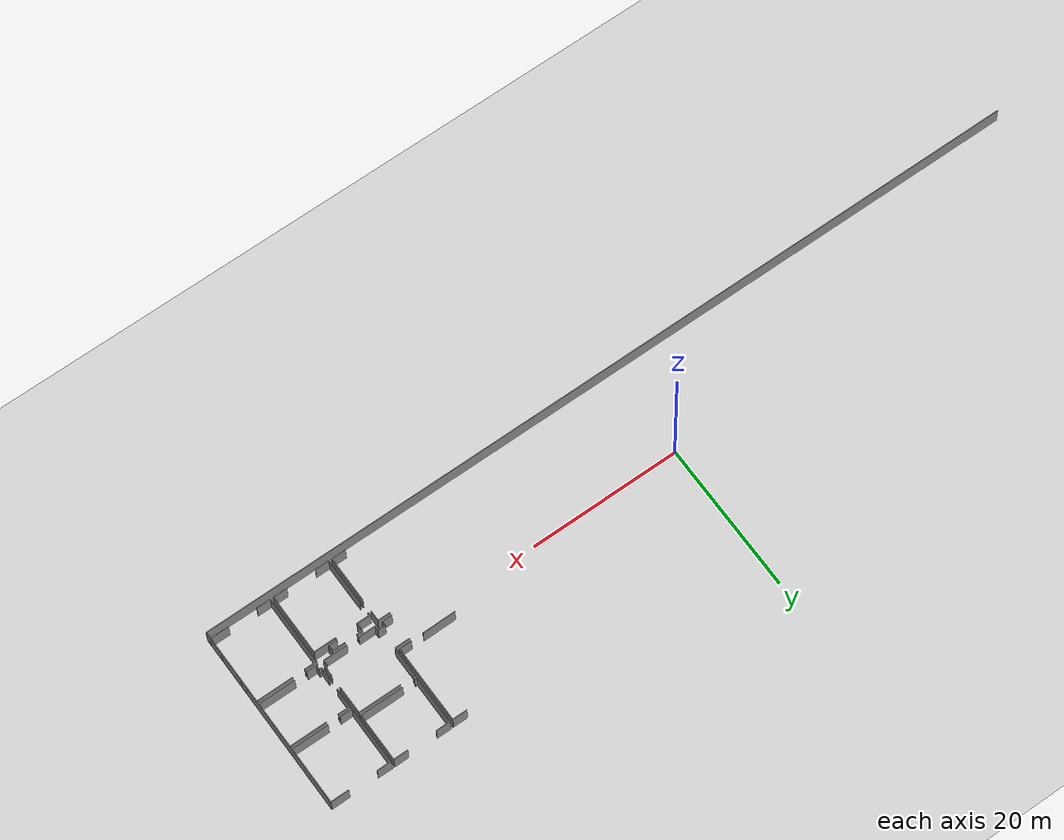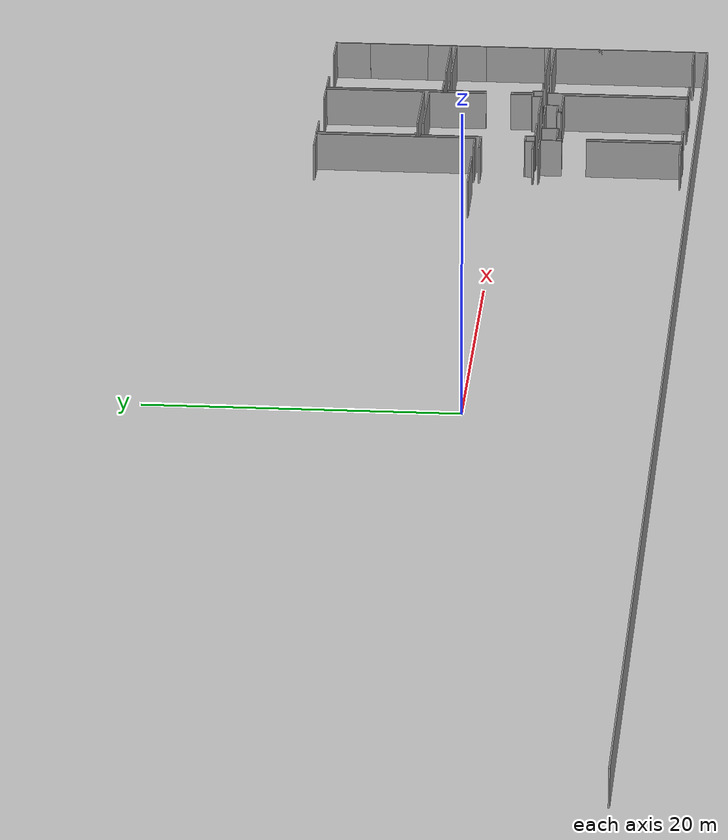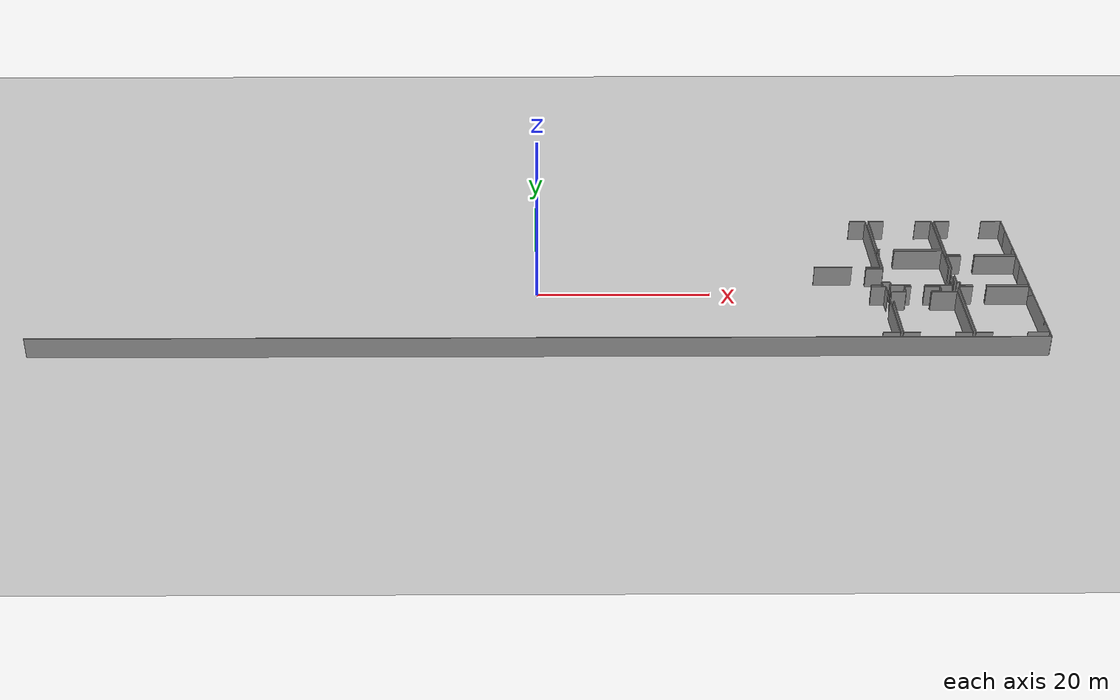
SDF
<sdf version="1.6">
 <world name="default">
  <model name="ground_plane">
   <static>1</static>
   <link name="link">
    <collision name="collision">
     <geometry><plane><normal>0 0 1</normal><size>100 100</size></plane></geometry>
     <surface><friction><ode><mu>100</mu><mu2>50</mu2></ode></friction></surface>
    </collision>
    <visual name="visual">
     <cast_shadows>0</cast_shadows>
     <geometry><plane><normal>0 0 1</normal><size>100 100</size></plane></geometry>
     <material>
      <script><uri>file://media/materials/scripts/gazebo.material</uri><name>Gazebo/Grey</name></script>
     </material>
    </visual>
   </link>
  </model>
  <model name="0510034692_Layout1">
   <static>1</static>
   <link name="Wall_242">
    <collision name="Wall_242_Collision">
     <geometry><box><size>1.93645641546 0.1 2.5</size></box></geometry>
     <pose>0.968228207728 0 1.25 0 0 0</pose>
    </collision>
    <visual name="Wall_242_Visual">
     <pose>0.968228207728 0 1.25 0 0 0</pose>
     <geometry><box><size>1.93645641546 0.1 2.5</size></box></geometry>
     <material>
      <script><uri>file://media/materials/scripts/gazebo.material</uri><name>Gazebo/Grey</name></script>
      <ambient>1 1 1 1</ambient>
     </material>
    </visual>
    <pose>94.4257564818 -0.0582421528533 0 0 0 0.0</pose>
   </link>
   <link name="Wall_243">
    <collision name="Wall_243_Collision">
     <geometry><box><size>10.4006019625 0.1 2.5</size></box></geometry>
     <pose>5.20030098123 0 1.25 0 0 0</pose>
    </collision>
    <visual name="Wall_243_Visual">
     <pose>5.20030098123 0 1.25 0 0 0</pose>
     <geometry><box><size>10.4006019625 0.1 2.5</size></box></geometry>
     <material>
      <script><uri>file://media/materials/scripts/gazebo.material</uri><name>Gazebo/Grey</name></script>
      <ambient>1 1 1 1</ambient>
     </material>
    </visual>
    <pose>96.3622128973 -0.0582421528533 0 0 0 -1.57079632679</pose>
   </link>
   <link name="Wall_244">
    <collision name="Wall_244_Collision">
     <geometry><box><size>1.62392826191 0.1 2.5</size></box></geometry>
     <pose>0.811964130955 0 1.25 0 0 0</pose>
    </collision>
    <visual name="Wall_244_Visual">
     <pose>0.811964130955 0 1.25 0 0 0</pose>
     <geometry><box><size>1.62392826191 0.1 2.5</size></box></geometry>
     <material>
      <script><uri>file://media/materials/scripts/gazebo.material</uri><name>Gazebo/Grey</name></script>
      <ambient>1 1 1 1</ambient>
     </material>
    </visual>
    <pose>96.3622128973 -10.4588441153 0 0 0 3.14159265359</pose>
   </link>
   <link name="Wall_245">
    <collision name="Wall_245_Collision">
     <geometry><box><size>4.39995014292 0.1 2.5</size></box></geometry>
     <pose>2.19997507146 0 1.25 0 0 0</pose>
    </collision>
    <visual name="Wall_245_Visual">
     <pose>2.19997507146 0 1.25 0 0 0</pose>
     <geometry><box><size>4.39995014292 0.1 2.5</size></box></geometry>
     <material>
      <script><uri>file://media/materials/scripts/gazebo.material</uri><name>Gazebo/Grey</name></script>
      <ambient>1 1 1 1</ambient>
     </material>
    </visual>
    <pose>93.1283141879 -10.4588441153 0 0 0 -3.13221991081</pose>
   </link>
   <link name="Wall_246">
    <collision name="Wall_246_Collision">
     <geometry><box><size>6.48403923922 0.1 2.5</size></box></geometry>
     <pose>3.24201961961 0 1.25 0 0 0</pose>
    </collision>
    <visual name="Wall_246_Visual">
     <pose>3.24201961961 0 1.25 0 0 0</pose>
     <geometry><box><size>6.48403923922 0.1 2.5</size></box></geometry>
     <material>
      <script><uri>file://media/materials/scripts/gazebo.material</uri><name>Gazebo/Grey</name></script>
      <ambient>1 1 1 1</ambient>
     </material>
    </visual>
    <pose>96.7352672097 -6.52845046689 0 0 0 1.57079632679</pose>
   </link>
   <link name="Wall_247">
    <collision name="Wall_247_Collision">
     <geometry><box><size>1.87796048416 0.1 2.5</size></box></geometry>
     <pose>0.938980242079 0 1.25 0 0 0</pose>
    </collision>
    <visual name="Wall_247_Visual">
     <pose>0.938980242079 0 1.25 0 0 0</pose>
     <geometry><box><size>1.87796048416 0.1 2.5</size></box></geometry>
     <material>
      <script><uri>file://media/materials/scripts/gazebo.material</uri><name>Gazebo/Grey</name></script>
      <ambient>1 1 1 1</ambient>
     </material>
    </visual>
    <pose>96.7352672097 -0.0444112276659 0 0 0 0.0</pose>
   </link>
   <link name="Wall_248">
    <collision name="Wall_248_Collision">
     <geometry><box><size>1.91602725073 0.1 2.5</size></box></geometry>
     <pose>0.958013625365 0 1.25 0 0 0</pose>
    </collision>
    <visual name="Wall_248_Visual">
     <pose>0.958013625365 0 1.25 0 0 0</pose>
     <geometry><box><size>1.91602725073 0.1 2.5</size></box></geometry>
     <material>
      <script><uri>file://media/materials/scripts/gazebo.material</uri><name>Gazebo/Grey</name></script>
      <ambient>1 1 1 1</ambient>
     </material>
    </visual>
    <pose>102.47066004 -0.0444112276659 0 0 0 0.0</pose>
   </link>
   <link name="Wall_249">
    <collision name="Wall_249_Collision">
     <geometry><box><size>6.46145295772 0.1 2.5</size></box></geometry>
     <pose>3.23072647886 0 1.25 0 0 0</pose>
    </collision>
    <visual name="Wall_249_Visual">
     <pose>3.23072647886 0 1.25 0 0 0</pose>
     <geometry><box><size>6.46145295772 0.1 2.5</size></box></geometry>
     <material>
      <script><uri>file://media/materials/scripts/gazebo.material</uri><name>Gazebo/Grey</name></script>
      <ambient>1 1 1 1</ambient>
     </material>
    </visual>
    <pose>104.38668729 -0.0444112276659 0 0 0 -1.57079632679</pose>
   </link>
   <link name="Wall_250">
    <collision name="Wall_250_Collision">
     <geometry><box><size>5.70493941674 0.1 2.5</size></box></geometry>
     <pose>2.85246970837 0 1.25 0 0 0</pose>
    </collision>
    <visual name="Wall_250_Visual">
     <pose>2.85246970837 0 1.25 0 0 0</pose>
     <geometry><box><size>5.70493941674 0.1 2.5</size></box></geometry>
     <material>
      <script><uri>file://media/materials/scripts/gazebo.material</uri><name>Gazebo/Grey</name></script>
      <ambient>1 1 1 1</ambient>
     </material>
    </visual>
    <pose>104.38668729 -6.50586418539 0 0 0 3.14159265359</pose>
   </link>
   <link name="Wall_251">
    <collision name="Wall_251_Collision">
     <geometry><box><size>0.331317186254 0.1 2.5</size></box></geometry>
     <pose>0.165658593127 0 1.25 0 0 0</pose>
    </collision>
    <visual name="Wall_251_Visual">
     <pose>0.165658593127 0 1.25 0 0 0</pose>
     <geometry><box><size>0.331317186254 0.1 2.5</size></box></geometry>
     <material>
      <script><uri>file://media/materials/scripts/gazebo.material</uri><name>Gazebo/Grey</name></script>
      <ambient>1 1 1 1</ambient>
     </material>
    </visual>
    <pose>97.0658136327 -6.50586418539 0 0 0 -3.07336856694</pose>
   </link>
   <link name="Wall_252">
    <collision name="Wall_252_Collision">
     <geometry><box><size>7.67946259877 0.1 2.5</size></box></geometry>
     <pose>3.83973129938 0 1.25 0 0 0</pose>
    </collision>
    <visual name="Wall_252_Visual">
     <pose>3.83973129938 0 1.25 0 0 0</pose>
     <geometry><box><size>7.67946259877 0.1 2.5</size></box></geometry>
     <material>
      <script><uri>file://media/materials/scripts/gazebo.material</uri><name>Gazebo/Grey</name></script>
      <ambient>1 1 1 1</ambient>
     </material>
    </visual>
    <pose>104.722309282 -7.72818805998 0 0 0 1.57079632679</pose>
   </link>
   <link name="Wall_253">
    <collision name="Wall_253_Collision">
     <geometry><box><size>1.9037189962 0.1 2.5</size></box></geometry>
     <pose>0.951859498102 0 1.25 0 0 0</pose>
    </collision>
    <visual name="Wall_253_Visual">
     <pose>0.951859498102 0 1.25 0 0 0</pose>
     <geometry><box><size>1.9037189962 0.1 2.5</size></box></geometry>
     <material>
      <script><uri>file://media/materials/scripts/gazebo.material</uri><name>Gazebo/Grey</name></script>
      <ambient>1 1 1 1</ambient>
     </material>
    </visual>
    <pose>104.722309282 -0.0487254612106 0 0 0 0.0</pose>
   </link>
   <link name="Wall_254">
    <collision name="Wall_254_Collision">
     <geometry><box><size>2.41723967724 0.1 2.5</size></box></geometry>
     <pose>1.20861983862 0 1.25 0 0 0</pose>
    </collision>
    <visual name="Wall_254_Visual">
     <pose>1.20861983862 0 1.25 0 0 0</pose>
     <geometry><box><size>2.41723967724 0.1 2.5</size></box></geometry>
     <material>
      <script><uri>file://media/materials/scripts/gazebo.material</uri><name>Gazebo/Grey</name></script>
      <ambient>1 1 1 1</ambient>
     </material>
    </visual>
    <pose>110.454529882 -0.0487254612106 0 0 0 0.0</pose>
   </link>
   <link name="Wall_255">
    <collision name="Wall_255_Collision">
     <geometry><box><size>2.2796917607 0.1 2.5</size></box></geometry>
     <pose>1.13984588035 0 1.25 0 0 0</pose>
    </collision>
    <visual name="Wall_255_Visual">
     <pose>1.13984588035 0 1.25 0 0 0</pose>
     <geometry><box><size>2.2796917607 0.1 2.5</size></box></geometry>
     <material>
      <script><uri>file://media/materials/scripts/gazebo.material</uri><name>Gazebo/Grey</name></script>
      <ambient>1 1 1 1</ambient>
     </material>
    </visual>
    <pose>112.871769559 -0.0487254612106 0 0 0 -1.57079632679</pose>
   </link>
   <link name="Wall_256">
    <collision name="Wall_256_Collision">
     <geometry><box><size>1.54804850721 0.1 2.5</size></box></geometry>
     <pose>0.774024253606 0 1.25 0 0 0</pose>
    </collision>
    <visual name="Wall_256_Visual">
     <pose>0.774024253606 0 1.25 0 0 0</pose>
     <geometry><box><size>1.54804850721 0.1 2.5</size></box></geometry>
     <material>
      <script><uri>file://media/materials/scripts/gazebo.material</uri><name>Gazebo/Grey</name></script>
      <ambient>1 1 1 1</ambient>
     </material>
    </visual>
    <pose>112.871769559 -6.17316064556 0 0 0 -1.57079632679</pose>
   </link>
   <link name="Wall_257">
    <collision name="Wall_257_Collision">
     <geometry><box><size>4.89411728878 0.1 2.5</size></box></geometry>
     <pose>2.44705864439 0 1.25 0 0 0</pose>
    </collision>
    <visual name="Wall_257_Visual">
     <pose>2.44705864439 0 1.25 0 0 0</pose>
     <geometry><box><size>4.89411728878 0.1 2.5</size></box></geometry>
     <material>
      <script><uri>file://media/materials/scripts/gazebo.material</uri><name>Gazebo/Grey</name></script>
      <ambient>1 1 1 1</ambient>
     </material>
    </visual>
    <pose>112.871769559 -7.72120915277 0 0 0 3.14159265359</pose>
   </link>
   <link name="Wall_258">
    <collision name="Wall_258_Collision">
     <geometry><box><size>1.63434807865 0.1 2.5</size></box></geometry>
     <pose>0.817174039327 0 1.25 0 0 0</pose>
    </collision>
    <visual name="Wall_258_Visual">
     <pose>0.817174039327 0 1.25 0 0 0</pose>
     <geometry><box><size>1.63434807865 0.1 2.5</size></box></geometry>
     <material>
      <script><uri>file://media/materials/scripts/gazebo.material</uri><name>Gazebo/Grey</name></script>
      <ambient>1 1 1 1</ambient>
     </material>
    </visual>
    <pose>106.35664246 -7.72120915277 0 0 0 -3.13732249321</pose>
   </link>
   <link name="Wall_259">
    <collision name="Wall_259_Collision">
     <geometry><box><size>0.606784259138 0.1 2.5</size></box></geometry>
     <pose>0.303392129569 0 1.25 0 0 0</pose>
    </collision>
    <visual name="Wall_259_Visual">
     <pose>0.303392129569 0 1.25 0 0 0</pose>
     <geometry><box><size>0.606784259138 0.1 2.5</size></box></geometry>
     <material>
      <script><uri>file://media/materials/scripts/gazebo.material</uri><name>Gazebo/Grey</name></script>
      <ambient>1 1 1 1</ambient>
     </material>
    </visual>
    <pose>105.055901047 -14.3403854133 0 0 0 1.57079632679</pose>
   </link>
   <link name="Wall_260">
    <collision name="Wall_260_Collision">
     <geometry><box><size>0.320014617638 0.1 2.5</size></box></geometry>
     <pose>0.160007308819 0 1.25 0 0 0</pose>
    </collision>
    <visual name="Wall_260_Visual">
     <pose>0.160007308819 0 1.25 0 0 0</pose>
     <geometry><box><size>0.320014617638 0.1 2.5</size></box></geometry>
     <material>
      <script><uri>file://media/materials/scripts/gazebo.material</uri><name>Gazebo/Grey</name></script>
      <ambient>1 1 1 1</ambient>
     </material>
    </visual>
    <pose>105.055901047 -13.7336011542 0 0 0 3.14159265359</pose>
   </link>
   <link name="Wall_261">
    <collision name="Wall_261_Collision">
     <geometry><box><size>1.47864010283 0.1 2.5</size></box></geometry>
     <pose>0.739320051416 0 1.25 0 0 0</pose>
    </collision>
    <visual name="Wall_261_Visual">
     <pose>0.739320051416 0 1.25 0 0 0</pose>
     <geometry><box><size>1.47864010283 0.1 2.5</size></box></geometry>
     <material>
      <script><uri>file://media/materials/scripts/gazebo.material</uri><name>Gazebo/Grey</name></script>
      <ambient>1 1 1 1</ambient>
     </material>
    </visual>
    <pose>104.735886429 -13.7336011542 0 0 0 1.57079632679</pose>
   </link>
   <link name="Wall_262">
    <collision name="Wall_262_Collision">
     <geometry><box><size>2.56100516566 0.1 2.5</size></box></geometry>
     <pose>1.28050258283 0 1.25 0 0 0</pose>
    </collision>
    <visual name="Wall_262_Visual">
     <pose>1.28050258283 0 1.25 0 0 0</pose>
     <geometry><box><size>2.56100516566 0.1 2.5</size></box></geometry>
     <material>
      <script><uri>file://media/materials/scripts/gazebo.material</uri><name>Gazebo/Grey</name></script>
      <ambient>1 1 1 1</ambient>
     </material>
    </visual>
    <pose>104.735886429 -10.636489026 0 0 0 1.57079632679</pose>
   </link>
   <link name="Wall_263">
    <collision name="Wall_263_Collision">
     <geometry><box><size>1.63801296554 0.1 2.5</size></box></geometry>
     <pose>0.81900648277 0 1.25 0 0 0</pose>
    </collision>
    <visual name="Wall_263_Visual">
     <pose>0.81900648277 0 1.25 0 0 0</pose>
     <geometry><box><size>1.63801296554 0.1 2.5</size></box></geometry>
     <material>
      <script><uri>file://media/materials/scripts/gazebo.material</uri><name>Gazebo/Grey</name></script>
      <ambient>1 1 1 1</ambient>
     </material>
    </visual>
    <pose>104.735886429 -8.07548386033 0 0 0 0.0</pose>
   </link>
   <link name="Wall_264">
    <collision name="Wall_264_Collision">
     <geometry><box><size>4.89031061213 0.1 2.5</size></box></geometry>
     <pose>2.44515530606 0 1.25 0 0 0</pose>
    </collision>
    <visual name="Wall_264_Visual">
     <pose>2.44515530606 0 1.25 0 0 0</pose>
     <geometry><box><size>4.89031061213 0.1 2.5</size></box></geometry>
     <material>
      <script><uri>file://media/materials/scripts/gazebo.material</uri><name>Gazebo/Grey</name></script>
      <ambient>1 1 1 1</ambient>
     </material>
    </visual>
    <pose>107.978921162 -8.07548386033 0 0 0 0.0</pose>
   </link>
   <link name="Wall_265">
    <collision name="Wall_265_Collision">
     <geometry><box><size>2.01500084381 0.1 2.5</size></box></geometry>
     <pose>1.00750042191 0 1.25 0 0 0</pose>
    </collision>
    <visual name="Wall_265_Visual">
     <pose>1.00750042191 0 1.25 0 0 0</pose>
     <geometry><box><size>2.01500084381 0.1 2.5</size></box></geometry>
     <material>
      <script><uri>file://media/materials/scripts/gazebo.material</uri><name>Gazebo/Grey</name></script>
      <ambient>1 1 1 1</ambient>
     </material>
    </visual>
    <pose>112.869231775 -8.07548386033 0 0 0 -1.57079632679</pose>
   </link>
   <link name="Wall_266">
    <collision name="Wall_266_Collision">
     <geometry><box><size>0.347422689569 0.1 2.5</size></box></geometry>
     <pose>0.173711344785 0 1.25 0 0 0</pose>
    </collision>
    <visual name="Wall_266_Visual">
     <pose>0.173711344785 0 1.25 0 0 0</pose>
     <geometry><box><size>0.347422689569 0.1 2.5</size></box></geometry>
     <material>
      <script><uri>file://media/materials/scripts/gazebo.material</uri><name>Gazebo/Grey</name></script>
      <ambient>1 1 1 1</ambient>
     </material>
    </visual>
    <pose>112.869231775 -13.9485514961 0 0 0 -1.57079632679</pose>
   </link>
   <link name="Wall_267">
    <collision name="Wall_267_Collision">
     <geometry><box><size>4.86493276775 0.1 2.5</size></box></geometry>
     <pose>2.43246638387 0 1.25 0 0 0</pose>
    </collision>
    <visual name="Wall_267_Visual">
     <pose>2.43246638387 0 1.25 0 0 0</pose>
     <geometry><box><size>4.86493276775 0.1 2.5</size></box></geometry>
     <material>
      <script><uri>file://media/materials/scripts/gazebo.material</uri><name>Gazebo/Grey</name></script>
      <ambient>1 1 1 1</ambient>
     </material>
    </visual>
    <pose>112.869231775 -14.2959741857 0 0 0 3.14159265359</pose>
   </link>
   <link name="Wall_268">
    <collision name="Wall_268_Collision">
     <geometry><box><size>1.32140954048 0.1 2.5</size></box></geometry>
     <pose>0.660704770239 0 1.25 0 0 0</pose>
    </collision>
    <visual name="Wall_268_Visual">
     <pose>0.660704770239 0 1.25 0 0 0</pose>
     <geometry><box><size>1.32140954048 0.1 2.5</size></box></geometry>
     <material>
      <script><uri>file://media/materials/scripts/gazebo.material</uri><name>Gazebo/Grey</name></script>
      <ambient>1 1 1 1</ambient>
     </material>
    </visual>
    <pose>106.376564068 -14.2959741857 0 0 0 -3.10797734248</pose>
   </link>
   <link name="Wall_269">
    <collision name="Wall_269_Collision">
     <geometry><box><size>9.27788612707 0.1 2.5</size></box></geometry>
     <pose>4.63894306354 0 1.25 0 0 0</pose>
    </collision>
    <visual name="Wall_269_Visual">
     <pose>4.63894306354 0 1.25 0 0 0</pose>
     <geometry><box><size>9.27788612707 0.1 2.5</size></box></geometry>
     <material>
      <script><uri>file://media/materials/scripts/gazebo.material</uri><name>Gazebo/Grey</name></script>
      <ambient>1 1 1 1</ambient>
     </material>
    </visual>
    <pose>104.740454441 -23.9569388737 0 0 0 1.57079632679</pose>
   </link>
   <link name="Wall_270">
    <collision name="Wall_270_Collision">
     <geometry><box><size>1.63039961223 0.1 2.5</size></box></geometry>
     <pose>0.815199806113 0 1.25 0 0 0</pose>
    </collision>
    <visual name="Wall_270_Visual">
     <pose>0.815199806113 0 1.25 0 0 0</pose>
     <geometry><box><size>1.63039961223 0.1 2.5</size></box></geometry>
     <material>
      <script><uri>file://media/materials/scripts/gazebo.material</uri><name>Gazebo/Grey</name></script>
      <ambient>1 1 1 1</ambient>
     </material>
    </visual>
    <pose>104.740454441 -14.6790527466 0 0 0 0.0</pose>
   </link>
   <link name="Wall_271">
    <collision name="Wall_271_Collision">
     <geometry><box><size>4.89665507322 0.1 2.5</size></box></geometry>
     <pose>2.44832753661 0 1.25 0 0 0</pose>
    </collision>
    <visual name="Wall_271_Visual">
     <pose>2.44832753661 0 1.25 0 0 0</pose>
     <geometry><box><size>4.89665507322 0.1 2.5</size></box></geometry>
     <material>
      <script><uri>file://media/materials/scripts/gazebo.material</uri><name>Gazebo/Grey</name></script>
      <ambient>1 1 1 1</ambient>
     </material>
    </visual>
    <pose>107.97765227 -14.6790527466 0 0 0 0.0</pose>
   </link>
   <link name="Wall_272">
    <collision name="Wall_272_Collision">
     <geometry><box><size>3.16157185293 0.1 2.5</size></box></geometry>
     <pose>1.58078592646 0 1.25 0 0 0</pose>
    </collision>
    <visual name="Wall_272_Visual">
     <pose>1.58078592646 0 1.25 0 0 0</pose>
     <geometry><box><size>3.16157185293 0.1 2.5</size></box></geometry>
     <material>
      <script><uri>file://media/materials/scripts/gazebo.material</uri><name>Gazebo/Grey</name></script>
      <ambient>1 1 1 1</ambient>
     </material>
    </visual>
    <pose>112.874307343 -14.6790527466 0 0 0 -1.57079632679</pose>
   </link>
   <link name="Wall_273">
    <collision name="Wall_273_Collision">
     <geometry><box><size>2.26548016785 0.1 2.5</size></box></geometry>
     <pose>1.13274008392 0 1.25 0 0 0</pose>
    </collision>
    <visual name="Wall_273_Visual">
     <pose>1.13274008392 0 1.25 0 0 0</pose>
     <geometry><box><size>2.26548016785 0.1 2.5</size></box></geometry>
     <material>
      <script><uri>file://media/materials/scripts/gazebo.material</uri><name>Gazebo/Grey</name></script>
      <ambient>1 1 1 1</ambient>
     </material>
    </visual>
    <pose>112.874307343 -21.6980569453 0 0 0 -1.57079632679</pose>
   </link>
   <link name="Wall_274">
    <collision name="Wall_274_Collision">
     <geometry><box><size>2.4210463539 0.1 2.5</size></box></geometry>
     <pose>1.21052317695 0 1.25 0 0 0</pose>
    </collision>
    <visual name="Wall_274_Visual">
     <pose>1.21052317695 0 1.25 0 0 0</pose>
     <geometry><box><size>2.4210463539 0.1 2.5</size></box></geometry>
     <material>
      <script><uri>file://media/materials/scripts/gazebo.material</uri><name>Gazebo/Grey</name></script>
      <ambient>1 1 1 1</ambient>
     </material>
    </visual>
    <pose>112.874307343 -23.9635371132 0 0 0 3.14159265359</pose>
   </link>
   <link name="Wall_275">
    <collision name="Wall_275_Collision">
     <geometry><box><size>1.86934366204 0.1 2.5</size></box></geometry>
     <pose>0.934671831019 0 1.25 0 0 0</pose>
    </collision>
    <visual name="Wall_275_Visual">
     <pose>0.934671831019 0 1.25 0 0 0</pose>
     <geometry><box><size>1.86934366204 0.1 2.5</size></box></geometry>
     <material>
      <script><uri>file://media/materials/scripts/gazebo.material</uri><name>Gazebo/Grey</name></script>
      <ambient>1 1 1 1</ambient>
     </material>
    </visual>
    <pose>106.609786458 -23.9635371132 0 0 0 3.13806293705</pose>
   </link>
   <link name="Wall_276">
    <collision name="Wall_276_Collision">
     <geometry><box><size>6.23914304095 0.1 2.5</size></box></geometry>
     <pose>3.11957152048 0 1.25 0 0 0</pose>
    </collision>
    <visual name="Wall_276_Visual">
     <pose>3.11957152048 0 1.25 0 0 0</pose>
     <geometry><box><size>6.23914304095 0.1 2.5</size></box></geometry>
     <material>
      <script><uri>file://media/materials/scripts/gazebo.material</uri><name>Gazebo/Grey</name></script>
      <ambient>1 1 1 1</ambient>
     </material>
    </visual>
    <pose>96.7403427785 -23.9547817569 0 0 0 1.57079632679</pose>
   </link>
   <link name="Wall_277">
    <collision name="Wall_277_Collision">
     <geometry><box><size>0.335621991932 0.1 2.5</size></box></geometry>
     <pose>0.167810995966 0 1.25 0 0 0</pose>
    </collision>
    <visual name="Wall_277_Visual">
     <pose>0.167810995966 0 1.25 0 0 0</pose>
     <geometry><box><size>0.335621991932 0.1 2.5</size></box></geometry>
     <material>
      <script><uri>file://media/materials/scripts/gazebo.material</uri><name>Gazebo/Grey</name></script>
      <ambient>1 1 1 1</ambient>
     </material>
    </visual>
    <pose>96.7403427785 -16.1187378583 0 0 0 1.57079632679</pose>
   </link>
   <link name="Wall_278">
    <collision name="Wall_278_Collision">
     <geometry><box><size>1.75107126226 0.1 2.5</size></box></geometry>
     <pose>0.875535631128 0 1.25 0 0 0</pose>
    </collision>
    <visual name="Wall_278_Visual">
     <pose>0.875535631128 0 1.25 0 0 0</pose>
     <geometry><box><size>1.75107126226 0.1 2.5</size></box></geometry>
     <material>
      <script><uri>file://media/materials/scripts/gazebo.material</uri><name>Gazebo/Grey</name></script>
      <ambient>1 1 1 1</ambient>
     </material>
    </visual>
    <pose>96.7403427785 -15.7831158664 0 0 0 0.0</pose>
   </link>
   <link name="Wall_279">
    <collision name="Wall_279_Collision">
     <geometry><box><size>1.09441953891 0.1 2.5</size></box></geometry>
     <pose>0.547209769455 0 1.25 0 0 0</pose>
    </collision>
    <visual name="Wall_279_Visual">
     <pose>0.547209769455 0 1.25 0 0 0</pose>
     <geometry><box><size>1.09441953891 0.1 2.5</size></box></geometry>
     <material>
      <script><uri>file://media/materials/scripts/gazebo.material</uri><name>Gazebo/Grey</name></script>
      <ambient>1 1 1 1</ambient>
     </material>
    </visual>
    <pose>98.4914140408 -15.7831158664 0 0 0 1.57079632679</pose>
   </link>
   <link name="Wall_280">
    <collision name="Wall_280_Collision">
     <geometry><box><size>0.773389807496 0.1 2.5</size></box></geometry>
     <pose>0.386694903748 0 1.25 0 0 0</pose>
    </collision>
    <visual name="Wall_280_Visual">
     <pose>0.386694903748 0 1.25 0 0 0</pose>
     <geometry><box><size>0.773389807496 0.1 2.5</size></box></geometry>
     <material>
      <script><uri>file://media/materials/scripts/gazebo.material</uri><name>Gazebo/Grey</name></script>
      <ambient>1 1 1 1</ambient>
     </material>
    </visual>
    <pose>98.4914140408 -14.6886963274 0 0 0 0.0</pose>
   </link>
   <link name="Wall_281">
    <collision name="Wall_281_Collision">
     <geometry><box><size>1.74345790894 0.1 2.5</size></box></geometry>
     <pose>0.871728954471 0 1.25 0 0 0</pose>
    </collision>
    <visual name="Wall_281_Visual">
     <pose>0.871728954471 0 1.25 0 0 0</pose>
     <geometry><box><size>1.74345790894 0.1 2.5</size></box></geometry>
     <material>
      <script><uri>file://media/materials/scripts/gazebo.material</uri><name>Gazebo/Grey</name></script>
      <ambient>1 1 1 1</ambient>
     </material>
    </visual>
    <pose>100.851934236 -14.6886963274 0 0 0 0.0</pose>
   </link>
   <link name="Wall_282">
    <collision name="Wall_282_Collision">
     <geometry><box><size>0.832393295681 0.1 2.5</size></box></geometry>
     <pose>0.416196647841 0 1.25 0 0 0</pose>
    </collision>
    <visual name="Wall_282_Visual">
     <pose>0.416196647841 0 1.25 0 0 0</pose>
     <geometry><box><size>0.832393295681 0.1 2.5</size></box></geometry>
     <material>
      <script><uri>file://media/materials/scripts/gazebo.material</uri><name>Gazebo/Grey</name></script>
      <ambient>1 1 1 1</ambient>
     </material>
    </visual>
    <pose>102.595392145 -14.6886963274 0 0 0 -1.57079632679</pose>
   </link>
   <link name="Wall_283">
    <collision name="Wall_283_Collision">
     <geometry><box><size>1.14758612289 0.1 2.5</size></box></geometry>
     <pose>0.573793061444 0 1.25 0 0 0</pose>
    </collision>
    <visual name="Wall_283_Visual">
     <pose>0.573793061444 0 1.25 0 0 0</pose>
     <geometry><box><size>1.14758612289 0.1 2.5</size></box></geometry>
     <material>
      <script><uri>file://media/materials/scripts/gazebo.material</uri><name>Gazebo/Grey</name></script>
      <ambient>1 1 1 1</ambient>
     </material>
    </visual>
    <pose>102.595392145 -15.5210896231 0 0 0 3.14159265359</pose>
   </link>
   <link name="Wall_284">
    <collision name="Wall_284_Collision">
     <geometry><box><size>0.253778443805 0.1 2.5</size></box></geometry>
     <pose>0.126889221903 0 1.25 0 0 0</pose>
    </collision>
    <visual name="Wall_284_Visual">
     <pose>0.126889221903 0 1.25 0 0 0</pose>
     <geometry><box><size>0.253778443805 0.1 2.5</size></box></geometry>
     <material>
      <script><uri>file://media/materials/scripts/gazebo.material</uri><name>Gazebo/Grey</name></script>
      <ambient>1 1 1 1</ambient>
     </material>
    </visual>
    <pose>101.447806022 -15.5210896231 0 0 0 -1.57079632679</pose>
   </link>
   <link name="Wall_285">
    <collision name="Wall_285_Collision">
     <geometry><box><size>2.91299586722 0.1 2.5</size></box></geometry>
     <pose>1.45649793361 0 1.25 0 0 0</pose>
    </collision>
    <visual name="Wall_285_Visual">
     <pose>1.45649793361 0 1.25 0 0 0</pose>
     <geometry><box><size>2.91299586722 0.1 2.5</size></box></geometry>
     <material>
      <script><uri>file://media/materials/scripts/gazebo.material</uri><name>Gazebo/Grey</name></script>
      <ambient>1 1 1 1</ambient>
     </material>
    </visual>
    <pose>101.447806022 -15.7748680669 0 0 0 0.0</pose>
   </link>
   <link name="Wall_286">
    <collision name="Wall_286_Collision">
     <geometry><box><size>8.17598012407 0.1 2.5</size></box></geometry>
     <pose>4.08799006204 0 1.25 0 0 0</pose>
    </collision>
    <visual name="Wall_286_Visual">
     <pose>4.08799006204 0 1.25 0 0 0</pose>
     <geometry><box><size>8.17598012407 0.1 2.5</size></box></geometry>
     <material>
      <script><uri>file://media/materials/scripts/gazebo.material</uri><name>Gazebo/Grey</name></script>
      <ambient>1 1 1 1</ambient>
     </material>
    </visual>
    <pose>104.360801889 -15.7748680669 0 0 0 -1.57079632679</pose>
   </link>
   <link name="Wall_287">
    <collision name="Wall_287_Collision">
     <geometry><box><size>1.84268528047 0.1 2.5</size></box></geometry>
     <pose>0.921342640235 0 1.25 0 0 0</pose>
    </collision>
    <visual name="Wall_287_Visual">
     <pose>0.921342640235 0 1.25 0 0 0</pose>
     <geometry><box><size>1.84268528047 0.1 2.5</size></box></geometry>
     <material>
      <script><uri>file://media/materials/scripts/gazebo.material</uri><name>Gazebo/Grey</name></script>
      <ambient>1 1 1 1</ambient>
     </material>
    </visual>
    <pose>104.360801889 -23.950848191 0 0 0 3.14159265359</pose>
   </link>
   <link name="Wall_288">
    <collision name="Wall_288_Collision">
     <geometry><box><size>1.8607077078 0.1 2.5</size></box></geometry>
     <pose>0.930353853898 0 1.25 0 0 0</pose>
    </collision>
    <visual name="Wall_288_Visual">
     <pose>0.930353853898 0 1.25 0 0 0</pose>
     <geometry><box><size>1.8607077078 0.1 2.5</size></box></geometry>
     <material>
      <script><uri>file://media/materials/scripts/gazebo.material</uri><name>Gazebo/Grey</name></script>
      <ambient>1 1 1 1</ambient>
     </material>
    </visual>
    <pose>98.6010463285 -23.950848191 0 0 0 -3.13947863601</pose>
   </link>
   <link name="Wall_293">
    <collision name="Wall_293_Collision">
     <geometry><box><size>1.6592034656 0.1 2.5</size></box></geometry>
     <pose>0.829601732799 0 1.25 0 0 0</pose>
    </collision>
    <visual name="Wall_293_Visual">
     <pose>0.829601732799 0 1.25 0 0 0</pose>
     <geometry><box><size>1.6592034656 0.1 2.5</size></box></geometry>
     <material>
      <script><uri>file://media/materials/scripts/gazebo.material</uri><name>Gazebo/Grey</name></script>
      <ambient>1 1 1 1</ambient>
     </material>
    </visual>
    <pose>94.7125261233 -14.6874274352 0 0 0 0.0</pose>
   </link>
   <link name="Wall_294">
    <collision name="Wall_294_Collision">
     <geometry><box><size>1.43004153084 0.1 2.5</size></box></geometry>
     <pose>0.715020765421 0 1.25 0 0 0</pose>
    </collision>
    <visual name="Wall_294_Visual">
     <pose>0.715020765421 0 1.25 0 0 0</pose>
     <geometry><box><size>1.43004153084 0.1 2.5</size></box></geometry>
     <material>
      <script><uri>file://media/materials/scripts/gazebo.material</uri><name>Gazebo/Grey</name></script>
      <ambient>1 1 1 1</ambient>
     </material>
    </visual>
    <pose>96.3717295889 -14.6874274352 0 0 0 -1.57079632679</pose>
   </link>
   <link name="Wall_295">
    <collision name="Wall_295_Collision">
     <geometry><box><size>6.22023654689 0.1 2.5</size></box></geometry>
     <pose>3.11011827344 0 1.25 0 0 0</pose>
    </collision>
    <visual name="Wall_295_Visual">
     <pose>3.11011827344 0 1.25 0 0 0</pose>
     <geometry><box><size>6.22023654689 0.1 2.5</size></box></geometry>
     <material>
      <script><uri>file://media/materials/scripts/gazebo.material</uri><name>Gazebo/Grey</name></script>
      <ambient>1 1 1 1</ambient>
     </material>
    </visual>
    <pose>96.3717295889 -17.7261705213 0 0 0 -1.57079632679</pose>
   </link>
   <link name="Wall_296">
    <collision name="Wall_296_Collision">
     <geometry><box><size>1.89902409499 0.1 2.5</size></box></geometry>
     <pose>0.949512047497 0 1.25 0 0 0</pose>
    </collision>
    <visual name="Wall_296_Visual">
     <pose>0.949512047497 0 1.25 0 0 0</pose>
     <geometry><box><size>1.89902409499 0.1 2.5</size></box></geometry>
     <material>
      <script><uri>file://media/materials/scripts/gazebo.material</uri><name>Gazebo/Grey</name></script>
      <ambient>1 1 1 1</ambient>
     </material>
    </visual>
    <pose>96.3717295889 -23.9464070682 0 0 0 3.14159265359</pose>
   </link>
   <link name="Wall_334">
    <collision name="Wall_334_Collision">
     <geometry><box><size>1.96640227182 0.1 2.5</size></box></geometry>
     <pose>0.983201135912 0 1.25 0 0 0</pose>
    </collision>
    <visual name="Wall_334_Visual">
     <pose>0.983201135912 0 1.25 0 0 0</pose>
     <geometry><box><size>1.96640227182 0.1 2.5</size></box></geometry>
     <material>
      <script><uri>file://media/materials/scripts/gazebo.material</uri><name>Gazebo/Grey</name></script>
      <ambient>1 1 1 1</ambient>
     </material>
    </visual>
    <pose>94.7271183838 -10.8316446493 0 0 0 0.0</pose>
   </link>
   <link name="Wall_335">
    <collision name="Wall_335_Collision">
     <geometry><box><size>3.96236973235 0.1 2.5</size></box></geometry>
     <pose>1.98118486618 0 1.25 0 0 0</pose>
    </collision>
    <visual name="Wall_335_Visual">
     <pose>1.98118486618 0 1.25 0 0 0</pose>
     <geometry><box><size>3.96236973235 0.1 2.5</size></box></geometry>
     <material>
      <script><uri>file://media/materials/scripts/gazebo.material</uri><name>Gazebo/Grey</name></script>
      <ambient>1 1 1 1</ambient>
     </material>
    </visual>
    <pose>96.6935206557 -10.8316446493 0 0 0 1.57079632679</pose>
   </link>
   <link name="Wall_336">
    <collision name="Wall_336_Collision">
     <geometry><box><size>0.293494770261 0.1 2.5</size></box></geometry>
     <pose>0.14674738513 0 1.25 0 0 0</pose>
    </collision>
    <visual name="Wall_336_Visual">
     <pose>0.14674738513 0 1.25 0 0 0</pose>
     <geometry><box><size>0.293494770261 0.1 2.5</size></box></geometry>
     <material>
      <script><uri>file://media/materials/scripts/gazebo.material</uri><name>Gazebo/Grey</name></script>
      <ambient>1 1 1 1</ambient>
     </material>
    </visual>
    <pose>96.6935206557 -6.86927491692 0 0 0 0.0</pose>
   </link>
   <link name="Wall_337">
    <collision name="Wall_337_Collision">
     <geometry><box><size>5.65925929686 0.1 2.5</size></box></geometry>
     <pose>2.82962964843 0 1.25 0 0 0</pose>
    </collision>
    <visual name="Wall_337_Visual">
     <pose>2.82962964843 0 1.25 0 0 0</pose>
     <geometry><box><size>5.65925929686 0.1 2.5</size></box></geometry>
     <material>
      <script><uri>file://media/materials/scripts/gazebo.material</uri><name>Gazebo/Grey</name></script>
      <ambient>1 1 1 1</ambient>
     </material>
    </visual>
    <pose>98.7147390713 -6.86927491692 0 0 0 0.0</pose>
   </link>
   <link name="Wall_338">
    <collision name="Wall_338_Collision">
     <geometry><box><size>3.77190901028 0.1 2.5</size></box></geometry>
     <pose>1.88595450514 0 1.25 0 0 0</pose>
    </collision>
    <visual name="Wall_338_Visual">
     <pose>1.88595450514 0 1.25 0 0 0</pose>
     <geometry><box><size>3.77190901028 0.1 2.5</size></box></geometry>
     <material>
      <script><uri>file://media/materials/scripts/gazebo.material</uri><name>Gazebo/Grey</name></script>
      <ambient>1 1 1 1</ambient>
     </material>
    </visual>
    <pose>104.373998368 -6.86927491692 0 0 0 -1.57079632679</pose>
   </link>
   <link name="Wall_339">
    <collision name="Wall_339_Collision">
     <geometry><box><size>1.45021691712 0.1 2.5</size></box></geometry>
     <pose>0.725108458562 0 1.25 0 0 0</pose>
    </collision>
    <visual name="Wall_339_Visual">
     <pose>0.725108458562 0 1.25 0 0 0</pose>
     <geometry><box><size>1.45021691712 0.1 2.5</size></box></geometry>
     <material>
      <script><uri>file://media/materials/scripts/gazebo.material</uri><name>Gazebo/Grey</name></script>
      <ambient>1 1 1 1</ambient>
     </material>
    </visual>
    <pose>104.373998368 -12.2502661501 0 0 0 -1.57079632679</pose>
   </link>
   <link name="Wall_340">
    <collision name="Wall_340_Collision">
     <geometry><box><size>0.3000930098 0.1 2.5</size></box></geometry>
     <pose>0.1500465049 0 1.25 0 0 0</pose>
    </collision>
    <visual name="Wall_340_Visual">
     <pose>0.1500465049 0 1.25 0 0 0</pose>
     <geometry><box><size>0.3000930098 0.1 2.5</size></box></geometry>
     <material>
      <script><uri>file://media/materials/scripts/gazebo.material</uri><name>Gazebo/Grey</name></script>
      <ambient>1 1 1 1</ambient>
     </material>
    </visual>
    <pose>104.373998368 -13.7004830673 0 0 0 3.14159265359</pose>
   </link>
   <link name="Wall_341">
    <collision name="Wall_341_Collision">
     <geometry><box><size>0.628862983749 0.1 2.5</size></box></geometry>
     <pose>0.314431491875 0 1.25 0 0 0</pose>
    </collision>
    <visual name="Wall_341_Visual">
     <pose>0.314431491875 0 1.25 0 0 0</pose>
     <geometry><box><size>0.628862983749 0.1 2.5</size></box></geometry>
     <material>
      <script><uri>file://media/materials/scripts/gazebo.material</uri><name>Gazebo/Grey</name></script>
      <ambient>1 1 1 1</ambient>
     </material>
    </visual>
    <pose>104.073905358 -13.7004830673 0 0 0 -1.57079632679</pose>
   </link>
   <link name="Wall_342">
    <collision name="Wall_342_Collision">
     <geometry><box><size>3.19989239794 0.1 2.5</size></box></geometry>
     <pose>1.59994619897 0 1.25 0 0 0</pose>
    </collision>
    <visual name="Wall_342_Visual">
     <pose>1.59994619897 0 1.25 0 0 0</pose>
     <geometry><box><size>3.19989239794 0.1 2.5</size></box></geometry>
     <material>
      <script><uri>file://media/materials/scripts/gazebo.material</uri><name>Gazebo/Grey</name></script>
      <ambient>1 1 1 1</ambient>
     </material>
    </visual>
    <pose>104.073905358 -14.329346051 0 0 0 3.14159265359</pose>
   </link>
   <link name="Wall_343">
    <collision name="Wall_343_Collision">
     <geometry><box><size>2.24593922768 0.1 2.5</size></box></geometry>
     <pose>1.12296961384 0 1.25 0 0 0</pose>
    </collision>
    <visual name="Wall_343_Visual">
     <pose>1.12296961384 0 1.25 0 0 0</pose>
     <geometry><box><size>2.24593922768 0.1 2.5</size></box></geometry>
     <material>
      <script><uri>file://media/materials/scripts/gazebo.material</uri><name>Gazebo/Grey</name></script>
      <ambient>1 1 1 1</ambient>
     </material>
    </visual>
    <pose>99.2730516477 -14.329346051 0 0 0 3.14159265359</pose>
   </link>
   <link name="Wall_344">
    <collision name="Wall_344_Collision">
     <geometry><box><size>0.59358778006 0.1 2.5</size></box></geometry>
     <pose>0.29679389003 0 1.25 0 0 0</pose>
    </collision>
    <visual name="Wall_344_Visual">
     <pose>0.29679389003 0 1.25 0 0 0</pose>
     <geometry><box><size>0.59358778006 0.1 2.5</size></box></geometry>
     <material>
      <script><uri>file://media/materials/scripts/gazebo.material</uri><name>Gazebo/Grey</name></script>
      <ambient>1 1 1 1</ambient>
     </material>
    </visual>
    <pose>97.02711242 -14.329346051 0 0 0 1.57079632679</pose>
   </link>
   <link name="Wall_345">
    <collision name="Wall_345_Collision">
     <geometry><box><size>0.96435808646 0.1 2.5</size></box></geometry>
     <pose>0.48217904323 0 1.25 0 0 0</pose>
    </collision>
    <visual name="Wall_345_Visual">
     <pose>0.48217904323 0 1.25 0 0 0</pose>
     <geometry><box><size>0.96435808646 0.1 2.5</size></box></geometry>
     <material>
      <script><uri>file://media/materials/scripts/gazebo.material</uri><name>Gazebo/Grey</name></script>
      <ambient>1 1 1 1</ambient>
     </material>
    </visual>
    <pose>97.02711242 -13.735758271 0 0 0 3.14159265359</pose>
   </link>
   <link name="Wall_346">
    <collision name="Wall_346_Collision">
     <geometry><box><size>0.583690420752 0.1 2.5</size></box></geometry>
     <pose>0.291845210376 0 1.25 0 0 0</pose>
    </collision>
    <visual name="Wall_346_Visual">
     <pose>0.291845210376 0 1.25 0 0 0</pose>
     <geometry><box><size>0.583690420752 0.1 2.5</size></box></geometry>
     <material>
      <script><uri>file://media/materials/scripts/gazebo.material</uri><name>Gazebo/Grey</name></script>
      <ambient>1 1 1 1</ambient>
     </material>
    </visual>
    <pose>96.0627543336 -13.735758271 0 0 0 -1.57079632679</pose>
   </link>
   <link name="Wall_347">
    <collision name="Wall_347_Collision">
     <geometry><box><size>1.31964790779 0.1 2.5</size></box></geometry>
     <pose>0.659823953894 0 1.25 0 0 0</pose>
    </collision>
    <visual name="Wall_347_Visual">
     <pose>0.659823953894 0 1.25 0 0 0</pose>
     <geometry><box><size>1.31964790779 0.1 2.5</size></box></geometry>
     <material>
      <script><uri>file://media/materials/scripts/gazebo.material</uri><name>Gazebo/Grey</name></script>
      <ambient>1 1 1 1</ambient>
     </material>
    </visual>
    <pose>96.0627543336 -14.3194486917 0 0 0 3.14159265359</pose>
   </link>
   <link name="Wall_398">
    <collision name="Wall_398_Collision">
     <geometry><box><size>24.8296829419 0.1 2.5</size></box></geometry>
     <pose>12.414841471 0 1.25 0 0 0</pose>
    </collision>
    <visual name="Wall_398_Visual">
     <pose>12.414841471 0 1.25 0 0 0</pose>
     <geometry><box><size>24.8296829419 0.1 2.5</size></box></geometry>
     <material>
      <script><uri>file://media/materials/scripts/gazebo.material</uri><name>Gazebo/Grey</name></script>
      <ambient>1 1 1 1</ambient>
     </material>
    </visual>
    <pose>112.874307343 -24.8296829419 0 0 0 1.57079632679</pose>
   </link>
   <link name="Wall_399">
    <collision name="Wall_399_Collision">
     <geometry><box><size>112.874307343 0.1 2.5</size></box></geometry>
     <pose>56.4371536717 0 1.25 0 0 0</pose>
    </collision>
    <visual name="Wall_399_Visual">
     <pose>56.4371536717 0 1.25 0 0 0</pose>
     <geometry><box><size>112.874307343 0.1 2.5</size></box></geometry>
     <material>
      <script><uri>file://media/materials/scripts/gazebo.material</uri><name>Gazebo/Grey</name></script>
      <ambient>1 1 1 1</ambient>
     </material>
    </visual>
    <pose>112.874307343 -24.8296829419 0 0 0 3.14159265359</pose>
   </link>
   <pose>-56.4 12.4296829419 0 0 0 0</pose>
  </model>
 </world>
</sdf>
